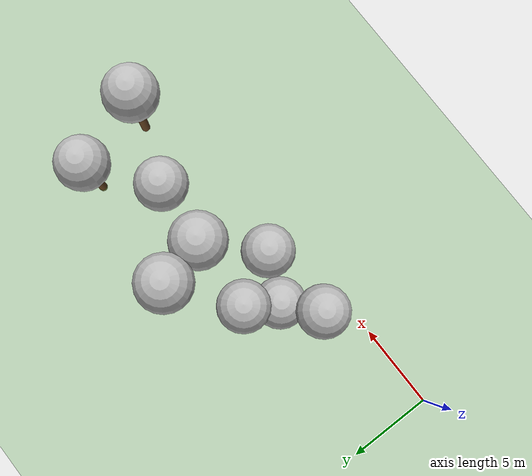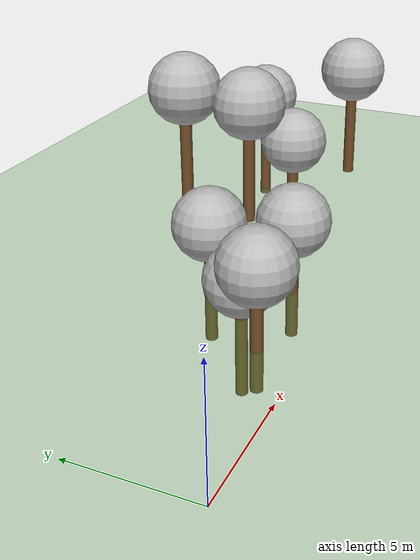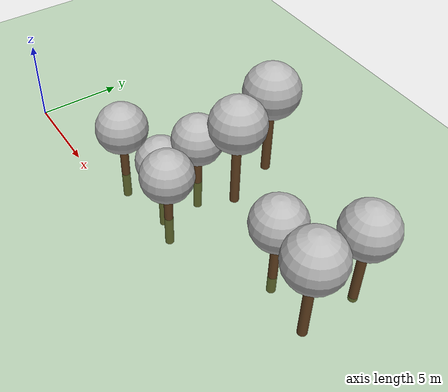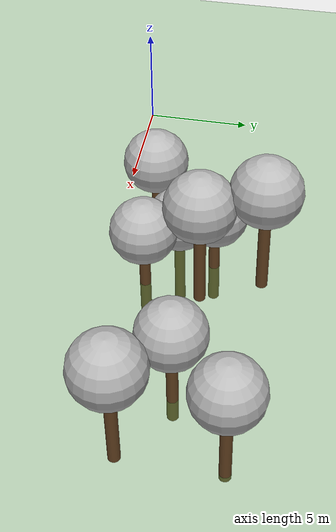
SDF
<sdf version="1.6">
 <world name="default">
  <model name="ground_plane">
   <static>1</static>
   <link name="link">
    <collision name="collision">
     <geometry><plane><normal>0 0 1</normal><size>250 250</size></plane></geometry>
     <surface><friction><ode><mu>1</mu><mu2>1</mu2></ode></friction></surface>
    </collision>
    <visual name="grass">
     <cast_shadows>0</cast_shadows>
     <geometry><plane><normal>0 0 1</normal><size>150 250</size></plane></geometry>
     <material>
      <script><uri>file://media/materials/scripts/Gazebo.material</uri><name>Gazebo/Grass</name></script>
     </material>
    </visual>
   </link>
  </model>
  <model name="tree_simple_13">
   <static>1</static>
   <link name="link">
    <pose>0 0 0.1 0 -0 0</pose>
    <inertial>
     <mass>666</mass>
     <inertia>
      <ixx>0.0861167</ixx>
      <ixy>0</ixy>
      <ixz>0</ixz>
      <iyy>0.0861167</iyy>
      <iyz>0</iyz>
      <izz>0.0861167</izz>
     </inertia>
    </inertial>
    <collision name="collision_trunk">
     <pose>0 0 2 0 -0 0</pose>
     <geometry><cylinder><radius>0.25</radius><length>4</length></cylinder></geometry>
     <surface>
      <contact>
       <poissons_ratio>0.347</poissons_ratio>
       <elastic_modulus>8.8e+09</elastic_modulus>
       <ode><kp>100000</kp><kd>100</kd><max_vel>100</max_vel><min_depth>0.001</min_depth></ode>
      </contact>
      <friction>
       <torsional>
        <coefficient>1</coefficient>
        <use_patch_radius>0</use_patch_radius>
        <surface_radius>0.01</surface_radius>
       </torsional>
      </friction>
     </surface>
    </collision>
    <collision name="collision_treetop">
     <pose>0 0 5.2 0 -0 0</pose>
     <geometry><sphere><radius>1.5</radius></sphere></geometry>
     <surface>
      <contact>
       <poissons_ratio>0.347</poissons_ratio>
       <elastic_modulus>8.8e+09</elastic_modulus>
       <ode><kp>100000</kp><kd>100</kd><max_vel>100</max_vel><min_depth>0.001</min_depth></ode>
      </contact>
      <friction>
       <torsional>
        <coefficient>1</coefficient>
        <use_patch_radius>0</use_patch_radius>
        <surface_radius>0.01</surface_radius>
       </torsional>
      </friction>
     </surface>
    </collision>
    <visual name="trunk">
     <pose>0 0 2 0 -0 0</pose>
     <geometry><cylinder><radius>0.25</radius><length>4</length></cylinder></geometry>
     <material>
      <script>
       <uri>model://tree_simple/scripts</uri>
       <uri>model://tree_simple/materials/textures</uri>
       <name>TreeSimple/Trunk</name>
      </script>
     </material>
    </visual>
    <visual name="treetop">
     <pose>0 0 5.2 0 -0 0</pose>
     <geometry><sphere><radius>1.5</radius></sphere></geometry>
     <material>
      <script>
       <uri>model://tree_simple/scripts</uri>
       <uri>model://tree_simple/materials/textures</uri>
       <name>TreeSimple/Treetop</name>
      </script>
     </material>
    </visual>
   </link>
   <pose>10.5318 4.98436 -2.12992 0 -0 0</pose>
  </model>
  <model name="tree_simple_14">
   <static>1</static>
   <link name="link">
    <pose>0 0 0.1 0 -0 0</pose>
    <inertial>
     <mass>666</mass>
     <inertia>
      <ixx>0.0861167</ixx>
      <ixy>0</ixy>
      <ixz>0</ixz>
      <iyy>0.0861167</iyy>
      <iyz>0</iyz>
      <izz>0.0861167</izz>
     </inertia>
    </inertial>
    <collision name="collision_trunk">
     <pose>0 0 2 0 -0 0</pose>
     <geometry><cylinder><radius>0.25</radius><length>4</length></cylinder></geometry>
     <surface>
      <contact>
       <poissons_ratio>0.347</poissons_ratio>
       <elastic_modulus>8.8e+09</elastic_modulus>
       <ode><kp>100000</kp><kd>100</kd><max_vel>100</max_vel><min_depth>0.001</min_depth></ode>
      </contact>
      <friction>
       <torsional>
        <coefficient>1</coefficient>
        <use_patch_radius>0</use_patch_radius>
        <surface_radius>0.01</surface_radius>
       </torsional>
      </friction>
     </surface>
    </collision>
    <collision name="collision_treetop">
     <pose>0 0 5.2 0 -0 0</pose>
     <geometry><sphere><radius>1.5</radius></sphere></geometry>
     <surface>
      <contact>
       <poissons_ratio>0.347</poissons_ratio>
       <elastic_modulus>8.8e+09</elastic_modulus>
       <ode><kp>100000</kp><kd>100</kd><max_vel>100</max_vel><min_depth>0.001</min_depth></ode>
      </contact>
      <friction>
       <torsional>
        <coefficient>1</coefficient>
        <use_patch_radius>0</use_patch_radius>
        <surface_radius>0.01</surface_radius>
       </torsional>
      </friction>
     </surface>
    </collision>
    <visual name="trunk">
     <pose>0 0 2 0 -0 0</pose>
     <geometry><cylinder><radius>0.25</radius><length>4</length></cylinder></geometry>
     <material>
      <script>
       <uri>model://tree_simple/scripts</uri>
       <uri>model://tree_simple/materials/textures</uri>
       <name>TreeSimple/Trunk</name>
      </script>
     </material>
    </visual>
    <visual name="treetop">
     <pose>0 0 5.2 0 -0 0</pose>
     <geometry><sphere><radius>1.5</radius></sphere></geometry>
     <material>
      <script>
       <uri>model://tree_simple/scripts</uri>
       <uri>model://tree_simple/materials/textures</uri>
       <name>TreeSimple/Treetop</name>
      </script>
     </material>
    </visual>
   </link>
   <pose>22.4121 3.0458 1.13672 0 -0 0</pose>
  </model>
  <model name="tree_simple_17">
   <static>1</static>
   <link name="link">
    <pose>0 0 0.1 0 -0 0</pose>
    <inertial>
     <mass>666</mass>
     <inertia>
      <ixx>0.0861167</ixx>
      <ixy>0</ixy>
      <ixz>0</ixz>
      <iyy>0.0861167</iyy>
      <iyz>0</iyz>
      <izz>0.0861167</izz>
     </inertia>
    </inertial>
    <collision name="collision_trunk">
     <pose>0 0 2 0 -0 0</pose>
     <geometry><cylinder><radius>0.25</radius><length>4</length></cylinder></geometry>
     <surface>
      <contact>
       <poissons_ratio>0.347</poissons_ratio>
       <elastic_modulus>8.8e+09</elastic_modulus>
       <ode><kp>100000</kp><kd>100</kd><max_vel>100</max_vel><min_depth>0.001</min_depth></ode>
      </contact>
      <friction>
       <torsional>
        <coefficient>1</coefficient>
        <use_patch_radius>0</use_patch_radius>
        <surface_radius>0.01</surface_radius>
       </torsional>
      </friction>
     </surface>
    </collision>
    <collision name="collision_treetop">
     <pose>0 0 5.2 0 -0 0</pose>
     <geometry><sphere><radius>1.5</radius></sphere></geometry>
     <surface>
      <contact>
       <poissons_ratio>0.347</poissons_ratio>
       <elastic_modulus>8.8e+09</elastic_modulus>
       <ode><kp>100000</kp><kd>100</kd><max_vel>100</max_vel><min_depth>0.001</min_depth></ode>
      </contact>
      <friction>
       <torsional>
        <coefficient>1</coefficient>
        <use_patch_radius>0</use_patch_radius>
        <surface_radius>0.01</surface_radius>
       </torsional>
      </friction>
     </surface>
    </collision>
    <visual name="trunk">
     <pose>0 0 2 0 -0 0</pose>
     <geometry><cylinder><radius>0.25</radius><length>4</length></cylinder></geometry>
     <material>
      <script>
       <uri>model://tree_simple/scripts</uri>
       <uri>model://tree_simple/materials/textures</uri>
       <name>TreeSimple/Trunk</name>
      </script>
     </material>
    </visual>
    <visual name="treetop">
     <pose>0 0 5.2 0 -0 0</pose>
     <geometry><sphere><radius>1.5</radius></sphere></geometry>
     <material>
      <script>
       <uri>model://tree_simple/scripts</uri>
       <uri>model://tree_simple/materials/textures</uri>
       <name>TreeSimple/Treetop</name>
      </script>
     </material>
    </visual>
   </link>
   <pose>21.5502 7.15897 -0.384211 0 -0 0</pose>
  </model>
  <model name="tree_simple_21">
   <static>1</static>
   <link name="link">
    <pose>0 0 0.1 0 -0 0</pose>
    <inertial>
     <mass>666</mass>
     <inertia>
      <ixx>0.0861167</ixx>
      <ixy>0</ixy>
      <ixz>0</ixz>
      <iyy>0.0861167</iyy>
      <iyz>0</iyz>
      <izz>0.0861167</izz>
     </inertia>
    </inertial>
    <collision name="collision_trunk">
     <pose>0 0 2 0 -0 0</pose>
     <geometry><cylinder><radius>0.25</radius><length>4</length></cylinder></geometry>
     <surface>
      <contact>
       <poissons_ratio>0.347</poissons_ratio>
       <elastic_modulus>8.8e+09</elastic_modulus>
       <ode><kp>100000</kp><kd>100</kd><max_vel>100</max_vel><min_depth>0.001</min_depth></ode>
      </contact>
      <friction>
       <torsional>
        <coefficient>1</coefficient>
        <use_patch_radius>0</use_patch_radius>
        <surface_radius>0.01</surface_radius>
       </torsional>
      </friction>
     </surface>
    </collision>
    <collision name="collision_treetop">
     <pose>0 0 5.2 0 -0 0</pose>
     <geometry><sphere><radius>1.5</radius></sphere></geometry>
     <surface>
      <contact>
       <poissons_ratio>0.347</poissons_ratio>
       <elastic_modulus>8.8e+09</elastic_modulus>
       <ode><kp>100000</kp><kd>100</kd><max_vel>100</max_vel><min_depth>0.001</min_depth></ode>
      </contact>
      <friction>
       <torsional>
        <coefficient>1</coefficient>
        <use_patch_radius>0</use_patch_radius>
        <surface_radius>0.01</surface_radius>
       </torsional>
      </friction>
     </surface>
    </collision>
    <visual name="trunk">
     <pose>0 0 2 0 -0 0</pose>
     <geometry><cylinder><radius>0.25</radius><length>4</length></cylinder></geometry>
     <material>
      <script>
       <uri>model://tree_simple/scripts</uri>
       <uri>model://tree_simple/materials/textures</uri>
       <name>TreeSimple/Trunk</name>
      </script>
     </material>
    </visual>
    <visual name="treetop">
     <pose>0 0 5.2 0 -0 0</pose>
     <geometry><sphere><radius>1.5</radius></sphere></geometry>
     <material>
      <script>
       <uri>model://tree_simple/scripts</uri>
       <uri>model://tree_simple/materials/textures</uri>
       <name>TreeSimple/Treetop</name>
      </script>
     </material>
    </visual>
   </link>
   <pose>18.3925 4.50955 -1.31425 0 -0 0</pose>
  </model>
  <model name="tree_simple_23">
   <static>1</static>
   <link name="link">
    <pose>0 0 0.1 0 -0 0</pose>
    <inertial>
     <mass>666</mass>
     <inertia>
      <ixx>0.0861167</ixx>
      <ixy>0</ixy>
      <ixz>0</ixz>
      <iyy>0.0861167</iyy>
      <iyz>0</iyz>
      <izz>0.0861167</izz>
     </inertia>
    </inertial>
    <collision name="collision_trunk">
     <pose>0 0 2 0 -0 0</pose>
     <geometry><cylinder><radius>0.25</radius><length>4</length></cylinder></geometry>
     <surface>
      <contact>
       <poissons_ratio>0.347</poissons_ratio>
       <elastic_modulus>8.8e+09</elastic_modulus>
       <ode><kp>100000</kp><kd>100</kd><max_vel>100</max_vel><min_depth>0.001</min_depth></ode>
      </contact>
      <friction>
       <torsional>
        <coefficient>1</coefficient>
        <use_patch_radius>0</use_patch_radius>
        <surface_radius>0.01</surface_radius>
       </torsional>
      </friction>
     </surface>
    </collision>
    <collision name="collision_treetop">
     <pose>0 0 5.2 0 -0 0</pose>
     <geometry><sphere><radius>1.5</radius></sphere></geometry>
     <surface>
      <contact>
       <poissons_ratio>0.347</poissons_ratio>
       <elastic_modulus>8.8e+09</elastic_modulus>
       <ode><kp>100000</kp><kd>100</kd><max_vel>100</max_vel><min_depth>0.001</min_depth></ode>
      </contact>
      <friction>
       <torsional>
        <coefficient>1</coefficient>
        <use_patch_radius>0</use_patch_radius>
        <surface_radius>0.01</surface_radius>
       </torsional>
      </friction>
     </surface>
    </collision>
    <visual name="trunk">
     <pose>0 0 2 0 -0 0</pose>
     <geometry><cylinder><radius>0.25</radius><length>4</length></cylinder></geometry>
     <material>
      <script>
       <uri>model://tree_simple/scripts</uri>
       <uri>model://tree_simple/materials/textures</uri>
       <name>TreeSimple/Trunk</name>
      </script>
     </material>
    </visual>
    <visual name="treetop">
     <pose>0 0 5.2 0 -0 0</pose>
     <geometry><sphere><radius>1.5</radius></sphere></geometry>
     <material>
      <script>
       <uri>model://tree_simple/scripts</uri>
       <uri>model://tree_simple/materials/textures</uri>
       <name>TreeSimple/Treetop</name>
      </script>
     </material>
    </visual>
   </link>
   <pose>7.69657 1.78666 -1.8698 0 -0 0</pose>
  </model>
  <model name="tree_simple_25">
   <static>1</static>
   <link name="link">
    <pose>0 0 0.1 0 -0 0</pose>
    <inertial>
     <mass>666</mass>
     <inertia>
      <ixx>0.0861167</ixx>
      <ixy>0</ixy>
      <ixz>0</ixz>
      <iyy>0.0861167</iyy>
      <iyz>0</iyz>
      <izz>0.0861167</izz>
     </inertia>
    </inertial>
    <collision name="collision_trunk">
     <pose>0 0 2 0 -0 0</pose>
     <geometry><cylinder><radius>0.25</radius><length>4</length></cylinder></geometry>
     <surface>
      <contact>
       <poissons_ratio>0.347</poissons_ratio>
       <elastic_modulus>8.8e+09</elastic_modulus>
       <ode><kp>100000</kp><kd>100</kd><max_vel>100</max_vel><min_depth>0.001</min_depth></ode>
      </contact>
      <friction>
       <torsional>
        <coefficient>1</coefficient>
        <use_patch_radius>0</use_patch_radius>
        <surface_radius>0.01</surface_radius>
       </torsional>
      </friction>
     </surface>
    </collision>
    <collision name="collision_treetop">
     <pose>0 0 5.2 0 -0 0</pose>
     <geometry><sphere><radius>1.5</radius></sphere></geometry>
     <surface>
      <contact>
       <poissons_ratio>0.347</poissons_ratio>
       <elastic_modulus>8.8e+09</elastic_modulus>
       <ode><kp>100000</kp><kd>100</kd><max_vel>100</max_vel><min_depth>0.001</min_depth></ode>
      </contact>
      <friction>
       <torsional>
        <coefficient>1</coefficient>
        <use_patch_radius>0</use_patch_radius>
        <surface_radius>0.01</surface_radius>
       </torsional>
      </friction>
     </surface>
    </collision>
    <visual name="trunk">
     <pose>0 0 2 0 -0 0</pose>
     <geometry><cylinder><radius>0.25</radius><length>4</length></cylinder></geometry>
     <material>
      <script>
       <uri>model://tree_simple/scripts</uri>
       <uri>model://tree_simple/materials/textures</uri>
       <name>TreeSimple/Trunk</name>
      </script>
     </material>
    </visual>
    <visual name="treetop">
     <pose>0 0 5.2 0 -0 0</pose>
     <geometry><sphere><radius>1.5</radius></sphere></geometry>
     <material>
      <script>
       <uri>model://tree_simple/scripts</uri>
       <uri>model://tree_simple/materials/textures</uri>
       <name>TreeSimple/Treetop</name>
      </script>
     </material>
    </visual>
   </link>
   <pose>14.2484 4.92325 1.6282 0 -0 0</pose>
  </model>
  <model name="tree_simple_13_clone">
   <static>1</static>
   <link name="link">
    <pose>0 0 0.1 0 -0 0</pose>
    <inertial>
     <mass>666</mass>
     <inertia>
      <ixx>0.0861167</ixx>
      <ixy>0</ixy>
      <ixz>0</ixz>
      <iyy>0.0861167</iyy>
      <iyz>0</iyz>
      <izz>0.0861167</izz>
     </inertia>
    </inertial>
    <collision name="collision_trunk">
     <pose>0 0 2 0 -0 0</pose>
     <geometry><cylinder><radius>0.25</radius><length>4</length></cylinder></geometry>
     <surface>
      <contact>
       <poissons_ratio>0.347</poissons_ratio>
       <elastic_modulus>8.8e+09</elastic_modulus>
       <ode><kp>100000</kp><kd>100</kd><max_vel>100</max_vel><min_depth>0.001</min_depth></ode>
      </contact>
      <friction>
       <torsional>
        <coefficient>1</coefficient>
        <use_patch_radius>0</use_patch_radius>
        <surface_radius>0.01</surface_radius>
       </torsional>
      </friction>
     </surface>
    </collision>
    <collision name="collision_treetop">
     <pose>0 0 5.2 0 -0 0</pose>
     <geometry><sphere><radius>1.5</radius></sphere></geometry>
     <surface>
      <contact>
       <poissons_ratio>0.347</poissons_ratio>
       <elastic_modulus>8.8e+09</elastic_modulus>
       <ode><kp>100000</kp><kd>100</kd><max_vel>100</max_vel><min_depth>0.001</min_depth></ode>
      </contact>
      <friction>
       <torsional>
        <coefficient>1</coefficient>
        <use_patch_radius>0</use_patch_radius>
        <surface_radius>0.01</surface_radius>
       </torsional>
      </friction>
     </surface>
    </collision>
    <visual name="trunk">
     <pose>0 0 2 0 -0 0</pose>
     <geometry><cylinder><radius>0.25</radius><length>4</length></cylinder></geometry>
     <material>
      <script>
       <uri>model://tree_simple/scripts</uri>
       <uri>model://tree_simple/materials/textures</uri>
       <name>TreeSimple/Trunk</name>
      </script>
     </material>
    </visual>
    <visual name="treetop">
     <pose>0 0 5.2 0 -0 0</pose>
     <geometry><sphere><radius>1.5</radius></sphere></geometry>
     <material>
      <script>
       <uri>model://tree_simple/scripts</uri>
       <uri>model://tree_simple/materials/textures</uri>
       <name>TreeSimple/Treetop</name>
      </script>
     </material>
    </visual>
   </link>
   <pose>12.1007 2.09122 -2.12992 0 -0 0</pose>
  </model>
  <model name="tree_simple_19_clone">
   <static>1</static>
   <link name="link">
    <pose>0 0 0.1 0 -0 0</pose>
    <inertial>
     <mass>666</mass>
     <inertia>
      <ixx>0.0861167</ixx>
      <ixy>0</ixy>
      <ixz>0</ixz>
      <iyy>0.0861167</iyy>
      <iyz>0</iyz>
      <izz>0.0861167</izz>
     </inertia>
    </inertial>
    <collision name="collision_trunk">
     <pose>0 0 2 0 -0 0</pose>
     <geometry><cylinder><radius>0.25</radius><length>4</length></cylinder></geometry>
     <surface>
      <contact>
       <poissons_ratio>0.347</poissons_ratio>
       <elastic_modulus>8.8e+09</elastic_modulus>
       <ode><kp>100000</kp><kd>100</kd><max_vel>100</max_vel><min_depth>0.001</min_depth></ode>
      </contact>
      <friction>
       <torsional>
        <coefficient>1</coefficient>
        <use_patch_radius>0</use_patch_radius>
        <surface_radius>0.01</surface_radius>
       </torsional>
      </friction>
     </surface>
    </collision>
    <collision name="collision_treetop">
     <pose>0 0 5.2 0 -0 0</pose>
     <geometry><sphere><radius>1.5</radius></sphere></geometry>
     <surface>
      <contact>
       <poissons_ratio>0.347</poissons_ratio>
       <elastic_modulus>8.8e+09</elastic_modulus>
       <ode><kp>100000</kp><kd>100</kd><max_vel>100</max_vel><min_depth>0.001</min_depth></ode>
      </contact>
      <friction>
       <torsional>
        <coefficient>1</coefficient>
        <use_patch_radius>0</use_patch_radius>
        <surface_radius>0.01</surface_radius>
       </torsional>
      </friction>
     </surface>
    </collision>
    <visual name="trunk">
     <pose>0 0 2 0 -0 0</pose>
     <geometry><cylinder><radius>0.25</radius><length>4</length></cylinder></geometry>
     <material>
      <script>
       <uri>model://tree_simple/scripts</uri>
       <uri>model://tree_simple/materials/textures</uri>
       <name>TreeSimple/Trunk</name>
      </script>
     </material>
    </visual>
    <visual name="treetop">
     <pose>0 0 5.2 0 -0 0</pose>
     <geometry><sphere><radius>1.5</radius></sphere></geometry>
     <material>
      <script>
       <uri>model://tree_simple/scripts</uri>
       <uri>model://tree_simple/materials/textures</uri>
       <name>TreeSimple/Treetop</name>
      </script>
     </material>
    </visual>
   </link>
   <pose>13.5311 7.45573 2.16351 0 -0 0</pose>
  </model>
  <model name="tree_simple_2_clone">
   <static>1</static>
   <link name="link">
    <pose>0 0 0.1 0 -0 0</pose>
    <inertial>
     <mass>666</mass>
     <inertia>
      <ixx>0.0861167</ixx>
      <ixy>0</ixy>
      <ixz>0</ixz>
      <iyy>0.0861167</iyy>
      <iyz>0</iyz>
      <izz>0.0861167</izz>
     </inertia>
    </inertial>
    <collision name="collision_trunk">
     <pose>0 0 2 0 -0 0</pose>
     <geometry><cylinder><radius>0.25</radius><length>4</length></cylinder></geometry>
     <surface>
      <contact>
       <poissons_ratio>0.347</poissons_ratio>
       <elastic_modulus>8.8e+09</elastic_modulus>
       <ode><kp>100000</kp><kd>100</kd><max_vel>100</max_vel><min_depth>0.001</min_depth></ode>
      </contact>
      <friction>
       <torsional>
        <coefficient>1</coefficient>
        <use_patch_radius>0</use_patch_radius>
        <surface_radius>0.01</surface_radius>
       </torsional>
      </friction>
     </surface>
    </collision>
    <collision name="collision_treetop">
     <pose>0 0 5.2 0 -0 0</pose>
     <geometry><sphere><radius>1.5</radius></sphere></geometry>
     <surface>
      <contact>
       <poissons_ratio>0.347</poissons_ratio>
       <elastic_modulus>8.8e+09</elastic_modulus>
       <ode><kp>100000</kp><kd>100</kd><max_vel>100</max_vel><min_depth>0.001</min_depth></ode>
      </contact>
      <friction>
       <torsional>
        <coefficient>1</coefficient>
        <use_patch_radius>0</use_patch_radius>
        <surface_radius>0.01</surface_radius>
       </torsional>
      </friction>
     </surface>
    </collision>
    <visual name="trunk">
     <pose>0 0 2 0 -0 0</pose>
     <geometry><cylinder><radius>0.25</radius><length>4</length></cylinder></geometry>
     <material>
      <script>
       <uri>model://tree_simple/scripts</uri>
       <uri>model://tree_simple/materials/textures</uri>
       <name>TreeSimple/Trunk</name>
      </script>
     </material>
    </visual>
    <visual name="treetop">
     <pose>0 0 5.2 0 -0 0</pose>
     <geometry><sphere><radius>1.5</radius></sphere></geometry>
     <material>
      <script>
       <uri>model://tree_simple/scripts</uri>
       <uri>model://tree_simple/materials/textures</uri>
       <name>TreeSimple/Treetop</name>
      </script>
     </material>
    </visual>
   </link>
   <pose>9.49917 3.19196 -3.64952 0 -0 0</pose>
  </model>
 </world>
</sdf>
